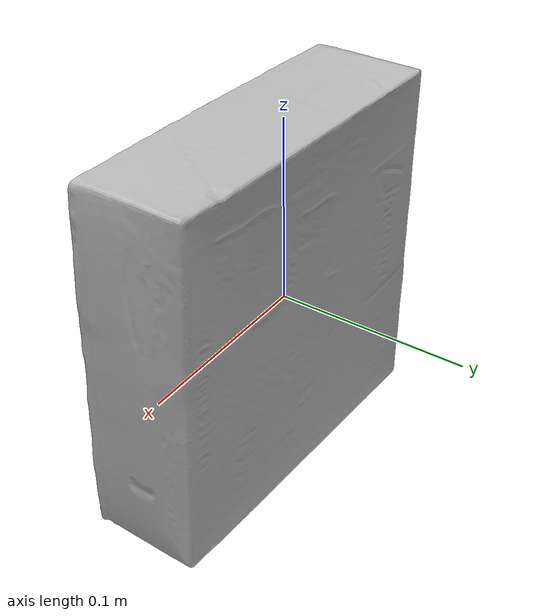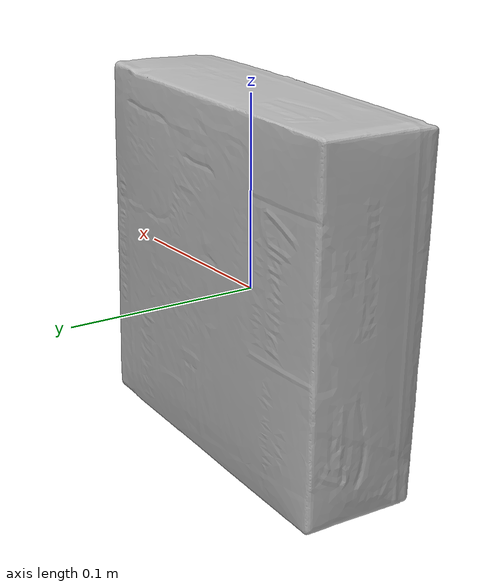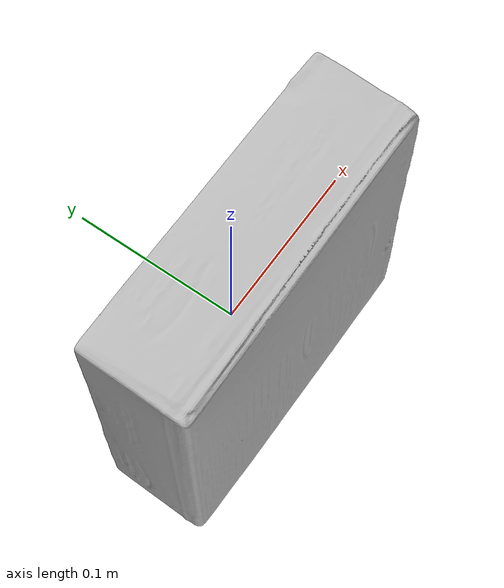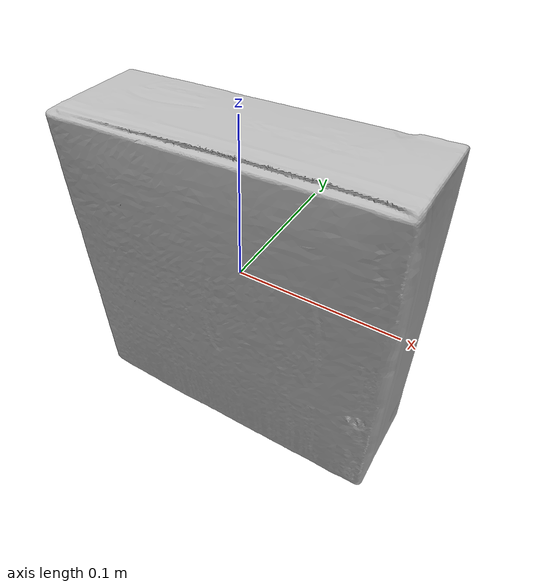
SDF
<?xml version='1.0'?>
<sdf version="1.4">
  <model name="ChocMarshmallows">
    <static>false</static>
    <link name="link">
      <inertial>
        <pose>0.009164334173535682 -0.008605867469260321 0.003971313502921979 1.3455132746526381 -0.002221957103643204 -1.5769069366553488</pose>
        <mass>0.24901973860892884</mass>
        <inertia>
          <ixx>0.0015350940978353634</ixx>
          <ixy>6.985038454955221e-20</ixy>
          <ixz>1.5917001480471167e-20</ixz>
          <iyy>0.0008613989669279689</iyy>
          <iyz>-1.4089403174226685e-20</iyz>
          <izz>0.0008531822933019297</izz>
        </inertia>
      </inertial>
      <collision name="collision">
        <geometry>
          <mesh>
            <!-- Use a downsampled mesh for collisions -->
            <uri>model:///ChocMarshmallows/ChocMarshmallows_250_collision.obj</uri>
	        </mesh>
        </geometry>
        <surface>
      </surface>
      </collision>
      <visual name="visual">
        <geometry>
          <mesh>
            <uri>model:///ChocMarshmallows/ChocMarshmallows_25k_tex.obj</uri>
	        </mesh>
        </geometry>
        <material>
          <script>
            <uri>model:///ChocMarshmallows/ChocMarshmallows.material</uri>
            <name>ChocMarshmallows</name>
          </script>
        </material>
      </visual>
    </link>
  </model>
</sdf>
